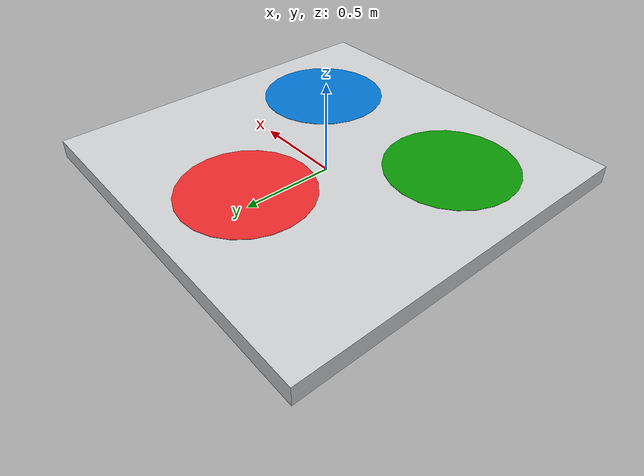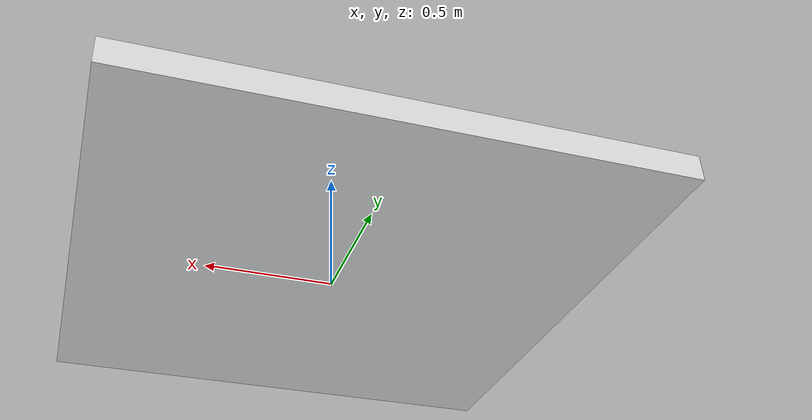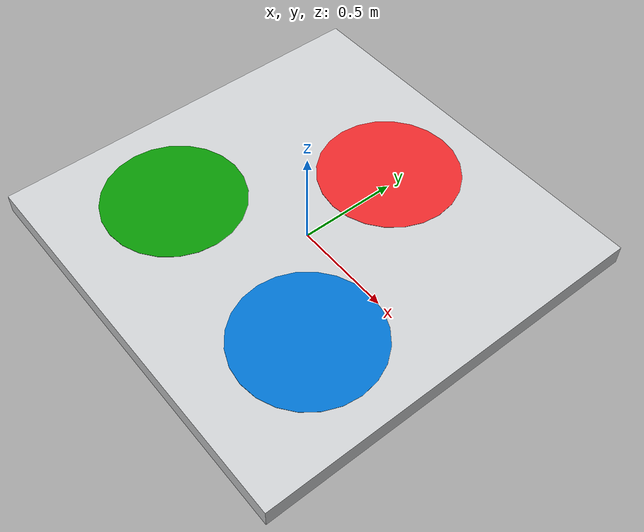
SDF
<?xml version='1.0'?>
<sdf version="1.9">
  <model name="robotx_landing_pad_2026">
    <pose>0 0 0.05 0 0 0</pose>
    <static>true</static>

    <link name="link">

      <inertial>
        <mass>10.0</mass>
        <inertia>
          <ixx>0.1</ixx>
          <ixy>0.0</ixy>
          <ixz>0.0</ixz>
          <iyy>0.1</iyy>
          <iyz>0.0</iyz>
          <izz>0.1</izz>
        </inertia>
      </inertial>

      <collision name="collision">
        <geometry>
          <box>
            <size>2 2 0.1</size>
          </box>
        </geometry>
      </collision>

      <visual name="base_visual">
        <geometry>
          <box>
            <size>2 2 0.1</size>
          </box>
        </geometry>
        <material>
          <ambient>0.800 0.808 0.816 1</ambient>
          <diffuse>0.800 0.808 0.816 1</diffuse>
        </material>
      </visual>

      <visual name="red_circle">
        <pose>0.0 0.5 0.051 0 0 0</pose>
        <geometry>
          <cylinder>
            <radius>0.35</radius>
            <length>0.002</length>
          </cylinder>
        </geometry>
        <material>
          <ambient>0.910 0.157 0.169 1</ambient>
          <diffuse>0.910 0.157 0.169 1</diffuse>
        </material>
      </visual>

      <visual name="green_circle">
        <pose>-0.5 -0.4 0.051 0 0 0</pose>
        <geometry>
          <cylinder>
            <radius>0.35</radius>
            <length>0.002</length>
          </cylinder>
        </geometry>
        <material>
          <ambient>0.031 0.580 0.016 1</ambient>
          <diffuse>0.031 0.580 0.016 1</diffuse>
        </material>
      </visual>

      <visual name="blue_circle">
        <pose>0.5 -0.4 0.051 0 0 0</pose>
        <geometry>
          <cylinder>
            <radius>0.35</radius>
            <length>0.002</length>
          </cylinder>
        </geometry>
        <material>
          <ambient>0.000 0.447 0.808 1</ambient>
          <diffuse>0.000 0.447 0.808 1</diffuse>
        </material>
      </visual>

    </link>
  </model>
</sdf>
